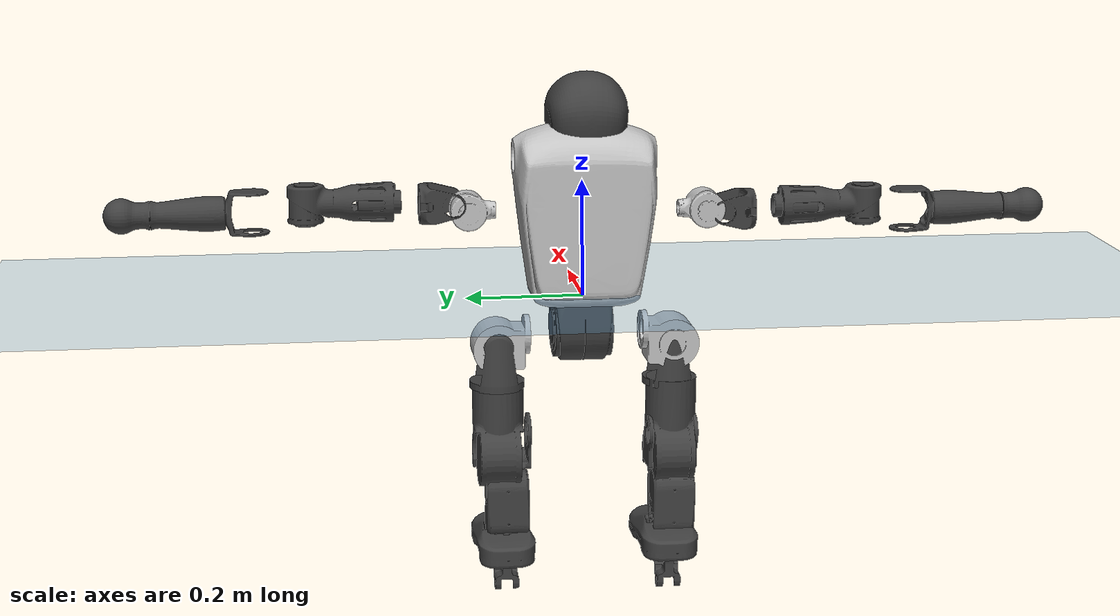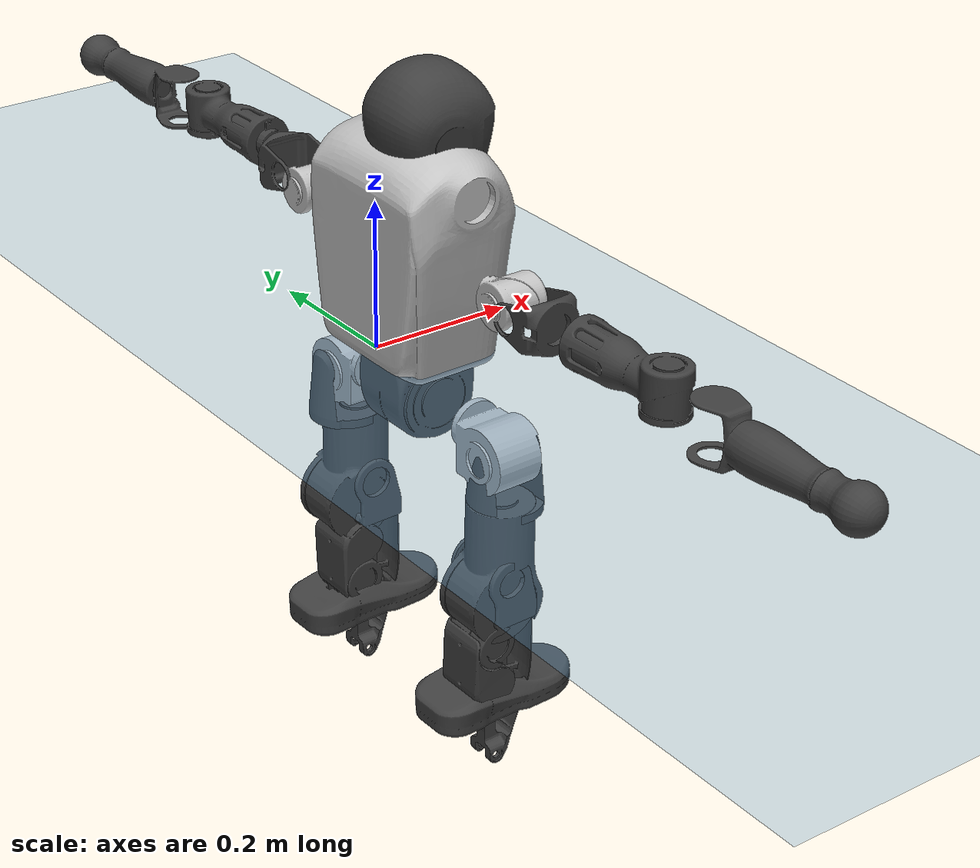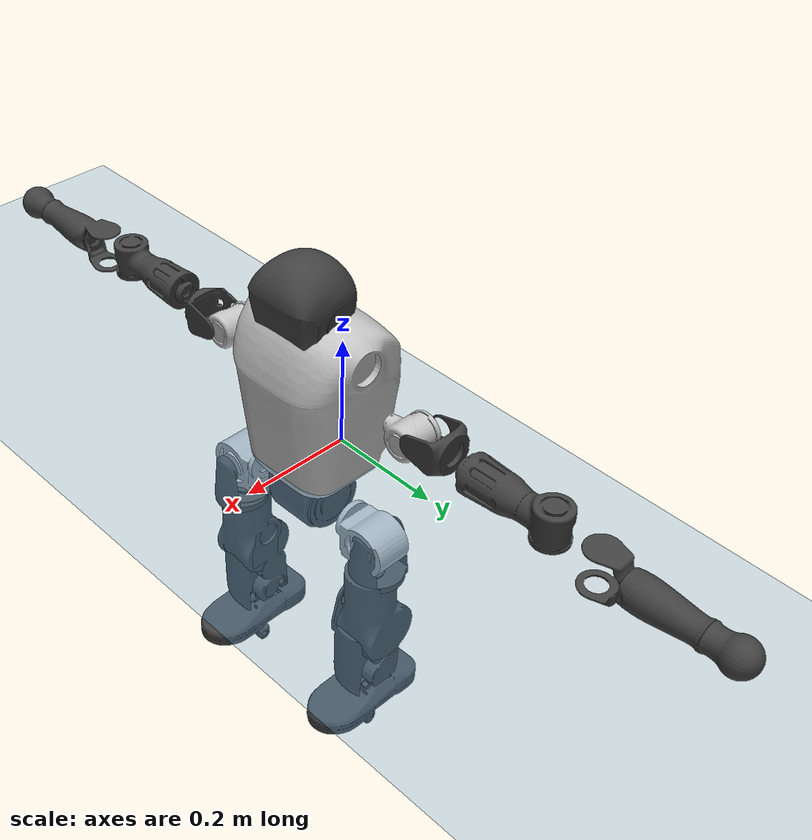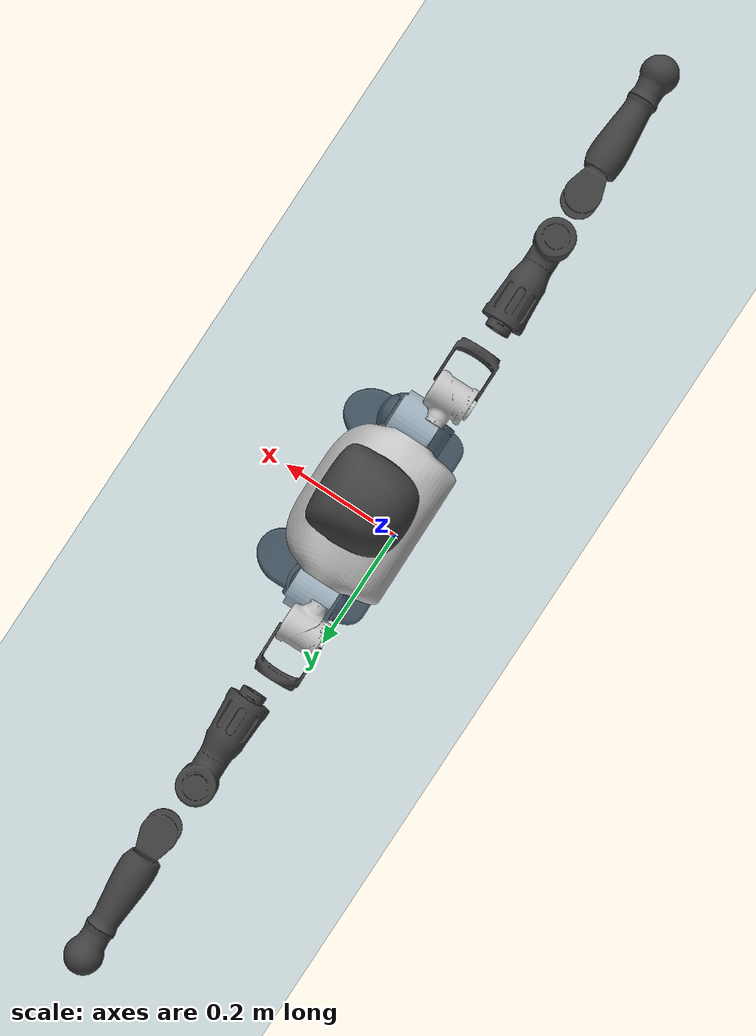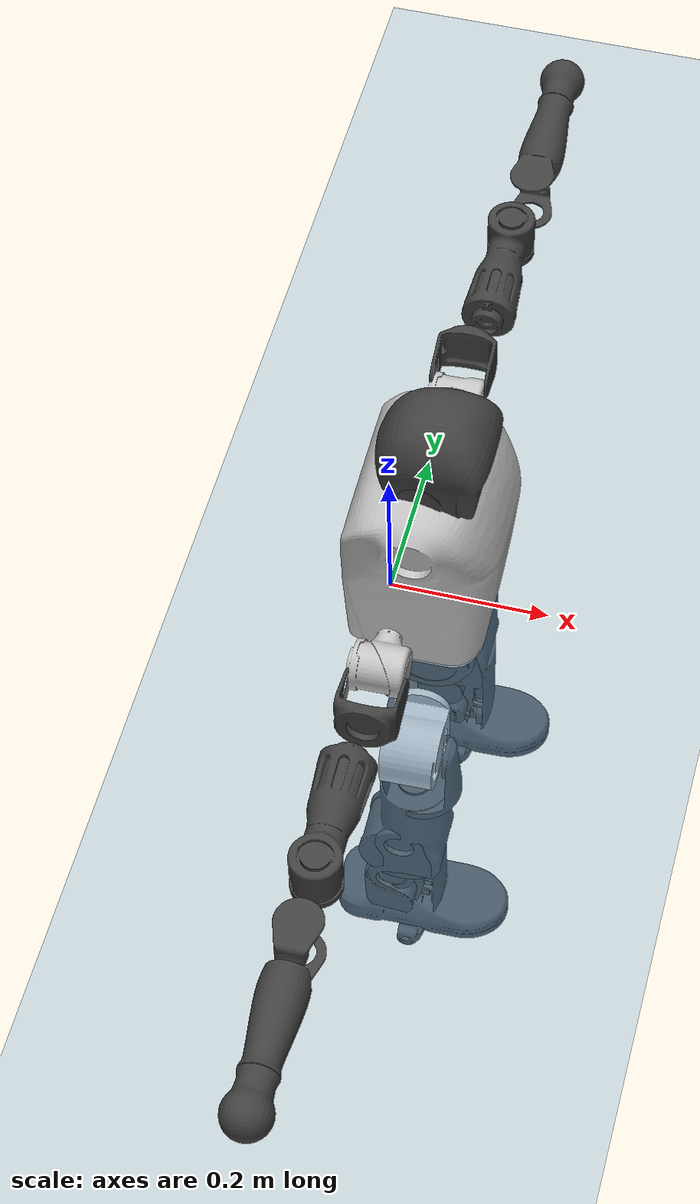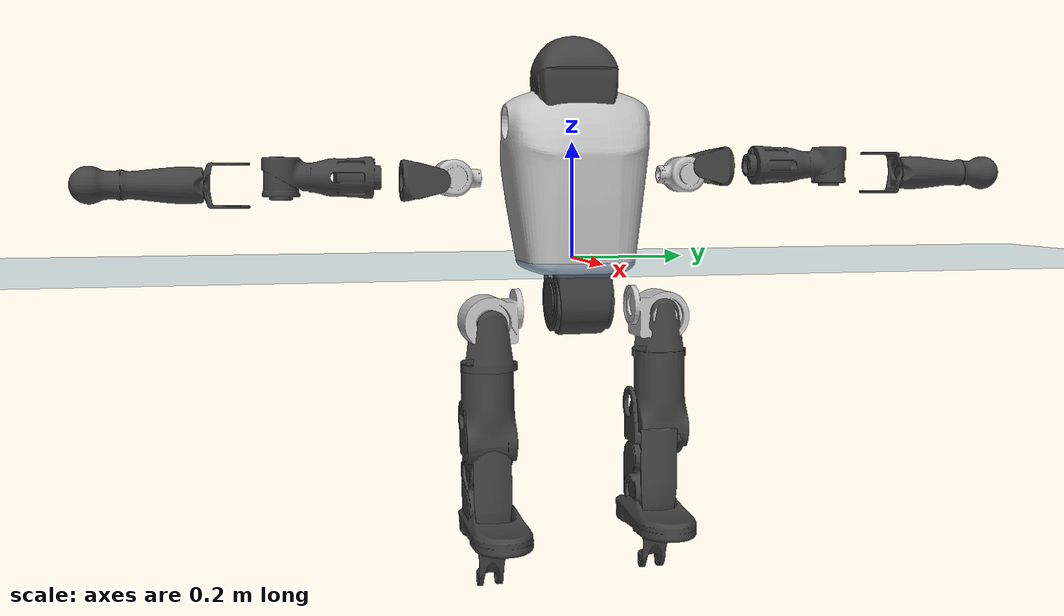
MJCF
<mujoco model="T1">
  <compiler angle="radian" assetdir="assets" balanceinertia="true" inertiafromgeom="false"/>

  <option timestep="0.005" density="1.2" viscosity="2e-05"/>

  <size nkey="1"/>

  <visual>
    <quality shadowsize="8192"/>
    <map shadowclip="0.5"/>
  </visual>

  <default>
    <default class="/">
      <joint armature="0.01" damping="0.01" frictionloss="0.1"/>
      <geom contype="0" conaffinity="0" group="1" solref="-1000 -80"/>
      <site size="0.01 0.005 0.005" group="5"/>
      <general forcelimited="true" biastype="affine" gainprm="25" biasprm="0 -25 -0.6"/>
      <default class="t1">
        <geom rgba="0.25 0.25 0.25 1"/>
        <default class="visual">
          <geom type="mesh" group="2"/>
        </default>
        <default class="collision">
          <geom group="3"/>
        </default>
        <default class="foot">
          <geom size="0.1115 0.05 0.015" type="box" condim="6" group="4" priority="1" solimp="0.015 1 0.015"/>
        </default>
        <default class="reward_collision_sphere">
          <geom group="5" rgba="1 0 0 1"/>
        </default>
      </default>
    </default>
  </default>

  <asset>
    <texture type="skybox" colorspace="auto" name="//unnamed_texture_0" builtin="gradient" rgb1="0.95 0.95 0.95" rgb2="0.95 0.95 0.95" width="100" height="600"/>
    <texture type="2d" colorspace="auto" name="texplane" builtin="checker" rgb1="0.345 0.575 0.748" rgb2="0.345 0.575 0.748" markrgb="1 1 1" width="512" height="512"/>
    <material name="MatPlane" class="/" texture="texplane" texuniform="true" texrepeat="2 2" specular="0.9"/>
    <mesh name="Trunk" class="/" file="Trunk.stl"/>
    <mesh name="H1" class="/" file="H1.stl"/>
    <mesh name="H2" class="/" file="H2.stl"/>
    <mesh name="AL1" class="/" file="AL1.stl"/>
    <mesh name="AL2" class="/" file="AL2.stl"/>
    <mesh name="AL3" class="/" file="AL3.stl"/>
    <mesh name="left_hand_link" class="/" file="left_hand_link.stl"/>
    <mesh name="AR1" class="/" file="AR1.stl"/>
    <mesh name="AR2" class="/" file="AR2.stl"/>
    <mesh name="AR3" class="/" file="AR3.stl"/>
    <mesh name="right_hand_link" class="/" file="right_hand_link.stl"/>
    <mesh name="Waist" class="/" file="Waist.stl"/>
    <mesh name="Hip_Pitch_Left" class="/" file="Hip_Pitch_Left.stl"/>
    <mesh name="Hip_Roll_Left" class="/" file="Hip_Roll_Left.stl"/>
    <mesh name="Hip_Yaw_Left" class="/" file="Hip_Yaw_Left.stl"/>
    <mesh name="Shank_Left" class="/" file="Shank_Left.stl"/>
    <mesh name="Ankle_Cross_Left" class="/" file="Ankle_Cross_Left.stl"/>
    <mesh name="left_foot_link" class="/" file="left_foot_link.stl"/>
    <mesh name="Hip_Pitch_Right" class="/" file="Hip_Pitch_Right.stl"/>
    <mesh name="Hip_Roll_Right" class="/" file="Hip_Roll_Right.stl"/>
    <mesh name="Hip_Yaw_Right" class="/" file="Hip_Yaw_Right.stl"/>
    <mesh name="Shank_Right" class="/" file="Shank_Right.stl"/>
    <mesh name="Ankle_Cross_Right" class="/" file="Ankle_Cross_Right.stl"/>
    <mesh name="right_foot_link" class="/" file="right_foot_link.stl"/>
  </asset>

  <worldbody>
    <geom name="floor" class="/" size="100 100 0.125" type="plane" group="0" material="MatPlane"/>
    <light name="toplight_shadow" class="/" pos="0 0 5" dir="0.0990148 0.0990148 -0.990148" type="directional" ambient="0.04 0.04 0.04" diffuse="0.55 0.55 0.55" specular="0.12 0.12 0.12"/>
    <light name="toplight_fill" class="/" pos="0 0 5" dir="0.0990148 0.0990148 -0.990148" type="directional" castshadow="false" ambient="0.04 0.04 0.04" diffuse="0.3 0.3 0.3" specular="0.08 0.08 0.08"/>
    <body name="trunk" childclass="t1" pos="-0.0012226 -0.00870762 0.013115" quat="0.999975 0.00338859 -0.000450613 0.006152">
      <inertial pos="0.0515816 0.00100535 0.0656264" quat="0.999931 0.00159143 -0.0101227 0.00573332" mass="14.2075" diaginertia="0.0873794 0.659481 0.0069605"/>
      <joint name="//unnamed_joint_0" type="free" armature="0" damping="0" frictionloss="0"/>
      <geom name="//unnamed_geom_1" class="visual" rgba="0.76 0.76 0.76 1" mesh="Trunk"/>
      <geom name="//unnamed_geom_2" class="collision" size="0.0774246 0.103233 0.154849" pos="0.0567829 0 0.0755418" type="box"/>
      <geom name="//unnamed_geom_3" class="reward_collision_sphere" size="0.118718" pos="0.0567829 0 0.0629515"/>
      <geom name="//unnamed_geom_4" class="reward_collision_sphere" size="0.0154849" pos="0.0567829 0.129292 0"/>
      <geom name="//unnamed_geom_5" class="reward_collision_sphere" size="0.0154849" pos="0.0567829 -0.129292 0"/>
      <geom name="//unnamed_geom_6" class="reward_collision_sphere" size="0.0154849" pos="0.0567829 0.162756 0.113313"/>
      <geom name="//unnamed_geom_7" class="reward_collision_sphere" size="0.0154849" pos="0.0567829 -0.162756 0.113313"/>
      <site name="imu" pos="0.0645725 0.0057545 -0.00481951" size="0.0103233"/>
      <camera name="track" pos="0 -3.04217 0" quat="0.707107 0.707107 0 0" mode="trackcom"/>
      <camera name="ego_camera" pos="0.115459 0 0.264396" quat="-0.5 -0.5 0.5 0.5"/>
      <body name="H1" pos="0.050267 -0.000195001 0.143683" quat="0.999981 -0.00102076 -0.00551398 -0.00265959">
        <inertial pos="-0.0111392 -0.00907155 0.0324086" quat="0.764847 -0.0119503 0.00185787 0.644099" mass="0.421263" diaginertia="0.000160879 0.00150059 1.59898e-05"/>
        <joint name="AAHead_yaw" pos="0 0 0" axis="0.00235999 0.00199158 0.999995" range="-1.27604 1.65306" armature="0.00986343" damping="0.0398276" frictionloss="0.0742807"/>
        <geom name="//unnamed_geom_8" class="visual" mesh="H1"/>
        <body name="H2" pos="0.00377129 -0.00405208 0.0292536" quat="0.999977 0.00675651 -0.00019487 0.00078925">
          <inertial pos="0.0047838 -0.000708616 0.0609436" quat="0.988461 0.106177 -0.0744772 -0.0782592" mass="0.825841" diaginertia="0.00175341 0.0179035 0.000173489"/>
          <joint name="Head_pitch" pos="0 0 0" axis="0.0126737 -0.997985 -0.0621643" stiffness="0.0325549" range="-1.02468 0.0889763" armature="0.00457298" damping="0" frictionloss="0.0328823"/>
          <geom name="//unnamed_geom_9" class="visual" mesh="H2"/>
          <geom name="//unnamed_geom_10" class="collision" size="0.0825862" pos="0.00946382 0 0.0692466"/>
          <geom name="//unnamed_geom_11" class="reward_collision_sphere" size="0.0929095" pos="0.0189276 0 0.0629515"/>
        </body>
      </body>
      <body name="AL1" pos="0.0412314 0.153664 0.130521" quat="1 7.55315e-05 0.000729683 0.000393793">
        <inertial pos="0.0132557 0.0744647 0.00670351" quat="0.462602 0.520076 -0.515527 0.499752" mass="0.645431" diaginertia="0.00108457 0.00946601 3.23021e-05"/>
        <joint name="Left_Shoulder_Pitch" pos="0 0 0" axis="0.00203047 0.999992 0.00338204" range="-3.26197 1.23929" armature="0.00960238" damping="0" frictionloss="0.133572"/>
        <geom name="//unnamed_geom_12" class="visual" rgba="0.76 0.76 0.76 1" mesh="AL1"/>
        <body name="AL2" pos="-0.00181435 0.0738225 0.0133738" quat="0.999979 -0.00216712 -0.000862988 0.00602997">
          <inertial pos="0.00911405 0.0571281 0.0117463" quat="0.501939 0.522352 -0.488522 0.486367" mass="0.154689" diaginertia="0.000322503 0.003142 1.67961e-05"/>
          <joint name="Left_Shoulder_Roll" pos="0 0 0" axis="-0.997837 0.0194331 0.0628012" range="-1.54908 1.8089" armature="0.009148" damping="0" frictionloss="0.17058"/>
          <geom name="//unnamed_geom_13" class="visual" mesh="AL2"/>
          <body name="AL3" pos="0.0134364 0.0989075 0.00220973" quat="1 -5.61295e-05 0.000538207 -0.000146096">
            <inertial pos="0.00270346 0.129356 -0.0120161" quat="0.703064 0.711113 0.00168439 -0.00393571" mass="1.10884" diaginertia="0.00884962 0.103708 6.59796e-05"/>
            <joint name="Left_Elbow_Pitch" pos="0 0 0" axis="-0.0591589 -0.998109 0.0166991" range="-2.3259 2.27437" armature="0.0129159" damping="0.00717787" frictionloss="0.0721631"/>
            <geom name="//unnamed_geom_14" class="visual" mesh="AL3"/>
            <geom name="//unnamed_geom_15" class="collision" size="0.0309698 0.0774246" pos="0 0.0760544 0" quat="0.707105 0.707108 0 0" type="cylinder"/>
            <geom name="//unnamed_geom_16" class="reward_collision_sphere" size="0.0371638"/>
            <body name="left_hand_link" pos="0.00884938 0.236317 -0.0141066" quat="0.999997 -0.0014572 0.00201151 0.000890244">
              <inertial pos="-0.000434803 0.160115 -0.00936515" quat="0.707625 0.706587 -0.000726769 -0.000516022" mass="0.320106" diaginertia="0.00598381 0.0485105 1.74855e-05"/>
              <joint name="Left_Elbow_Yaw" pos="0 0 0" axis="-0.0374572 0.0456781 0.998254" stiffness="0.0482669" range="-2.53322 0.00568121" armature="0.00980207" damping="0.00948866" frictionloss="0.0591295"/>
              <geom name="//unnamed_geom_17" class="visual" mesh="left_hand_link"/>
              <geom name="//unnamed_geom_18" class="collision" size="0.0309698 0.0903287" pos="0 0.197741 0" quat="0.707105 0.707108 0 0" type="cylinder"/>
              <geom name="//unnamed_geom_19" class="reward_collision_sphere" size="0.0516164"/>
              <geom name="//unnamed_geom_20" class="reward_collision_sphere" size="0.0361315" pos="0 0.16732 0"/>
              <geom name="//unnamed_geom_21" class="reward_collision_sphere" size="0.0361315" pos="0 0.327034 0"/>
            </body>
          </body>
        </body>
      </body>
      <body name="AR1" pos="0.0441066 -0.162348 0.126578" quat="0.999982 -0.00532281 -0.00269335 0.000559482">
        <inertial pos="-0.000210075 -0.0619469 -0.00330877" quat="0.503362 0.513439 -0.513247 0.468598" mass="0.620057" diaginertia="0.00125511 0.0113753 3.04977e-05"/>
        <joint name="Right_Shoulder_Pitch" pos="0 0 0" axis="0.0106401 -0.999779 -0.0181334" stiffness="0.0579999" range="-1.23141 3.1354" armature="0.0125398" damping="0.0637574" frictionloss="0.0966161"/>
        <geom name="//unnamed_geom_22" class="visual" rgba="0.76 0.76 0.76 1" mesh="AR1"/>
        <body name="AR2" pos="-0.00031967 -0.076104 -0.00448558" quat="0.999991 -0.00026482 0.00386978 -0.00161502">
          <inertial pos="0.00947766 -0.0577142 -0.00908347" quat="0.510126 0.48871 -0.512625 0.488005" mass="0.199789" diaginertia="0.00024841 0.00285646 1.98338e-05"/>
          <joint name="Right_Shoulder_Roll" pos="0 0 0" axis="-0.999974 -0.00591597 0.00400712" stiffness="0.00201057" range="-1.82083 1.59168" armature="0.00920909" damping="0" frictionloss="0.0426997"/>
          <geom name="//unnamed_geom_23" class="visual" mesh="AR2"/>
          <body name="AR3" pos="-0.00331186 -0.103144 0.00466761" quat="0.999998 -0.000433313 0.00100377 0.00166363">
            <inertial pos="0.0136288 -0.129196 -0.0033574" quat="0.736737 0.675823 -0.0134158 -0.0173645" mass="0.910595" diaginertia="0.0104979 0.114948 6.10686e-05"/>
            <joint name="Right_Elbow_Pitch" pos="0 0 0" axis="0.0315478 0.999339 0.0180799" stiffness="0.071288" range="-2.26481 2.41121" armature="0.0161749" damping="0.0108083" frictionloss="0.109347"/>
            <geom name="//unnamed_geom_24" class="visual" mesh="AR3"/>
            <geom name="//unnamed_geom_25" class="collision" size="0.0309698 0.0774246" pos="0 -0.0760544 0" quat="0.707105 0.707108 0 0" type="cylinder"/>
            <geom name="//unnamed_geom_26" class="reward_collision_sphere" size="0.0371638"/>
            <body name="right_hand_link" pos="0.00125524 -0.223859 -0.0136972" quat="1 -0.000218216 -0.000549997 0.000568581">
              <inertial pos="0.00883994 -0.176735 0.00481308" quat="0.718988 0.694908 0.0113575 0.0054013" mass="0.388123" diaginertia="0.00626459 0.0768789 2.1108e-05"/>
              <joint name="Right_Elbow_Yaw" pos="0 0 0" axis="0.0192777 0.0114219 0.999749" stiffness="0.0216279" range="0.0190807 2.41978" armature="0.0132285" damping="0.0391313" frictionloss="0.100614"/>
              <geom name="//unnamed_geom_27" class="visual" mesh="right_hand_link"/>
              <geom name="//unnamed_geom_28" class="collision" size="0.0309698 0.0903287" pos="0 -0.197741 0" quat="0.707105 0.707108 0 0" type="cylinder"/>
              <geom name="//unnamed_geom_29" class="reward_collision_sphere" size="0.0516164"/>
              <geom name="//unnamed_geom_30" class="reward_collision_sphere" size="0.0361315" pos="0 -0.16732 0"/>
              <geom name="//unnamed_geom_31" class="reward_collision_sphere" size="0.0361315" pos="0 -0.327034 0"/>
            </body>
          </body>
        </body>
      </body>
      <body name="Waist" pos="0.0605252 0.00241672 -0.0816261" quat="1 -0.000148577 0.000495609 -6.21755e-05">
        <inertial pos="-0.00537942 0.000260556 -0.00118602" quat="0.983483 0.00137266 -0.180995 0.000625842" mass="2.76363" diaginertia="0.00432942 0.035031 0.000496869"/>
        <joint name="Waist" pos="0 0 0" axis="-0.00364967 0.0186044 0.99982" stiffness="0.0411818" range="-1.37322 1.42665" armature="0.0112786" damping="0.0712939" frictionloss="0.096494"/>
        <geom name="//unnamed_geom_32" class="visual" mesh="Waist"/>
        <body name="Hip_Pitch_Left" pos="0.000381787 0.146987 -0.0118302" quat="1 -7.11165e-05 0.00017721 4.99811e-05">
          <inertial pos="0.00921347 -0.0108947 0.00263537" quat="0.974108 0.226053 -0.00201308 -0.00304547" mass="0.960097" diaginertia="0.00124224 0.0120035 0.000121723"/>
          <joint name="Left_Hip_Pitch" pos="0 0 0" axis="-0.0388319 0.999195 0.0101115" stiffness="0.0538882" range="-2.01754 1.5774" armature="0.0102874" damping="0.0639363" frictionloss="0.16142"/>
          <geom name="//unnamed_geom_33" class="visual" rgba="0.76 0.76 0.76 1" mesh="Hip_Pitch_Left"/>
          <body name="Hip_Roll_Left" pos="-0.00638275 0.000735927 -0.014069" quat="1 -8.12994e-05 0.000211099 -0.000442196">
            <inertial pos="0.00137402 0.00289882 -0.0333352" quat="0.712013 0.0103503 -0.0323004 0.701347" mass="0.376342" diaginertia="0.00120343 0.0097855 4.49711e-05"/>
            <joint name="Left_Hip_Roll" pos="0 0 0" axis="-0.999698 -0.0194169 0.0150956" range="-1.76111 0.174507" armature="0.0105684" damping="0" frictionloss="0.152319"/>
            <geom name="//unnamed_geom_34" class="visual" mesh="Hip_Roll_Left"/>
            <geom name="//unnamed_geom_35" class="reward_collision_sphere" size="0.056778"/>
            <body name="Hip_Yaw_Left" pos="0.0104381 -0.0025108 -0.0657655" quat="1 2.63255e-05 -0.000367093 -0.000254493">
              <inertial pos="-0.00962279 0.000642147 -0.0434735" quat="0.681913 -0.0482998 -0.0372581 0.728885" mass="2.67675" diaginertia="0.0160494 0.195768 0.000261845"/>
              <joint name="Left_Hip_Yaw" pos="0 0 0" axis="-0.0489948 -0.00914485 -0.998757" stiffness="0.0722764" range="-1.02786 0.804402" armature="0.015634" damping="0.0497608" frictionloss="0.164675"/>
              <geom name="//unnamed_geom_36" class="visual" mesh="Hip_Yaw_Left"/>
              <geom name="//unnamed_geom_37" class="collision" size="0.0516164 0.0825862" type="cylinder"/>
              <body name="Shank_Left" pos="-0.00513138 -0.0125675 -0.0957461" quat="0.999977 -0.00399683 -0.00533739 0.0015557">
                <inertial pos="-0.0127071 0.014954 -0.0728671" quat="0.99436 -0.0521246 -0.0471703 0.0794121" mass="1.72208" diaginertia="0.0208106 0.258727 0.000167646"/>
                <joint name="Left_Knee_Pitch" pos="0 0 0" axis="0.00810814 0.999333 -0.0355968" stiffness="0.00125148" range="0.0748825 2.31559" armature="0.00534899" damping="0.0267008" frictionloss="0.167433"/>
                <geom name="//unnamed_geom_38" class="visual" mesh="Shank_Left"/>
                <geom name="//unnamed_geom_39" class="collision" size="0.0516164 0.0774246" pos="0 0 -0.0755418" type="cylinder"/>
                <geom name="//unnamed_geom_40" class="reward_collision_sphere" size="0.0671013"/>
                <body name="Ankle_Cross_Left" pos="0.0135948 0.00519839 -0.178221" quat="1 0.000593334 0.000166778 -0.000111851">
                  <inertial pos="-0.00437184 0.000875281 -0.00510365" quat="0.493591 0.517794 0.562375 0.414718" mass="0.0712699" diaginertia="2.18165e-05 0.000200233 1.07322e-06"/>
                  <joint name="Left_Ankle_Pitch" pos="0 0 0" axis="0.0350679 0.99914 0.0221195" range="-0.849373 0.584729" armature="0.011237" damping="0.00782256" frictionloss="0.098859"/>
                  <geom name="//unnamed_geom_41" class="visual" mesh="Ankle_Cross_Left"/>
                  <body name="left_foot_link" pos="-0.0097406 0.00037885 -0.00958213" quat="0.999991 0.00022518 -0.00269206 0.00331376">
                    <inertial pos="-0.000372611 -0.00072476 -0.020117" quat="-0.00136531 0.619813 0.00402164 0.784738" mass="0.888218" diaginertia="0.00244369 0.0207949 0.000251464"/>
                    <joint name="Left_Ankle_Roll" pos="0 0 0" axis="-0.999211 0.00380571 0.0395277" range="-0.254381 0.315478" armature="0.00999425" damping="0" frictionloss="0.106022"/>
                    <geom name="//unnamed_geom_42" class="visual" mesh="left_foot_link"/>
                    <geom name="left_foot" class="foot" size="0.0616899 0.0266575 0.0116669" pos="0.00946382 0 -0.00944272"/>
                    <geom name="//unnamed_geom_44" class="reward_collision_sphere" size="0.0536811" pos="0.00946382 0 -0.00944272"/>
                    <geom name="//unnamed_geom_45" class="reward_collision_sphere" size="0.0309698" pos="0.0899063 -0.034985 -0.00944272"/>
                    <geom name="//unnamed_geom_46" class="reward_collision_sphere" size="0.0309698" pos="-0.0662467 -0.034985 -0.00944272"/>
                    <site name="left_foot" class="foot" pos="0.00946382 0 -0.00944272" size="0.0103233"/>
                  </body>
                </body>
              </body>
            </body>
          </body>
        </body>
        <body name="Hip_Pitch_Right" pos="0.00999239 -0.161596 -0.0117509" quat="0.99998 0.00363631 -0.00268254 0.00453102">
          <inertial pos="0.00140834 0.025325 -0.0150716" quat="0.974021 -0.225163 0.00412063 0.0238126" mass="1.07379" diaginertia="0.00127965 0.011193 0.000106926"/>
          <joint name="Right_Hip_Pitch" pos="0 0 0" axis="0.00172214 -0.999998 0.000568388" stiffness="0.0392228" range="-1.73773 2.0332" armature="0.0106797" damping="0" frictionloss="0.0334086"/>
          <geom name="//unnamed_geom_47" class="visual" rgba="0.76 0.76 0.76 1" mesh="Hip_Pitch_Right"/>
          <body name="Hip_Roll_Right" pos="0.0120891 -2.50291e-05 -0.0229425" quat="1 -6.79718e-07 -2.70447e-06 9.17322e-06">
            <inertial pos="0.00603992 0.00114791 -0.0405201" quat="0.706088 -0.00677015 -0.006797 0.708059" mass="0.423533" diaginertia="0.00156166 0.0114732 4.75953e-05"/>
            <joint name="Right_Hip_Roll" pos="0 0 0" axis="-0.999354 -0.0262466 -0.0245457" range="-0.375174 1.67747" armature="0.00943587" damping="0.041017" frictionloss="0.0467583"/>
            <geom name="//unnamed_geom_48" class="visual" mesh="Hip_Roll_Right"/>
            <geom name="//unnamed_geom_49" class="reward_collision_sphere" size="0.056778"/>
            <body name="Hip_Yaw_Right" pos="-0.0105549 -0.00175524 -0.0628661" quat="1 -0.000207158 -0.000519626 0.000488967">
              <inertial pos="0.00443283 -0.0145839 -0.0591427" quat="0.714657 -0.0324282 -0.0335587 0.697917" mass="2.99571" diaginertia="0.019556 0.228525 0.000323294"/>
              <joint name="Right_Hip_Yaw" pos="0 0 0" axis="0.0225993 0.01422 -0.999643" stiffness="0.0130516" range="-1.05266 0.983701" armature="0.0105786" damping="0" frictionloss="0.102963"/>
              <geom name="//unnamed_geom_50" class="visual" mesh="Hip_Yaw_Right"/>
              <geom name="//unnamed_geom_51" class="collision" size="0.0516164 0.0825862" type="cylinder"/>
              <body name="Shank_Right" pos="-0.0129226 -0.000233431 -0.0980915" quat="1 -6.62093e-06 6.97072e-05 -3.89723e-05">
                <inertial pos="0.00955166 -0.00541406 -0.0681708" quat="0.994864 -0.0406782 -0.0429988 -0.0821051" mass="2.03888" diaginertia="0.0323895 0.291524 0.000226481"/>
                <joint name="Right_Knee_Pitch" pos="0 0 0" axis="-0.00066624 -1 0.000691916" range="-2.35861 0.241528" armature="0.0110711" damping="0" frictionloss="0.151169"/>
                <geom name="//unnamed_geom_52" class="visual" mesh="Shank_Right"/>
                <geom name="//unnamed_geom_53" class="collision" size="0.0516164 0.0774246" pos="0 0 -0.0755418" type="cylinder"/>
                <geom name="//unnamed_geom_54" class="reward_collision_sphere" size="0.0671013"/>
                <body name="Ankle_Cross_Right" pos="0.00731083 0.00650543 -0.164625" quat="0.999997 -0.00191218 -0.00161978 0.000395453">
                  <inertial pos="-0.00405135 0.00730397 -0.0045538" quat="0.456611 0.562128 0.51913 0.453897" mass="0.0926856" diaginertia="2.34553e-05 0.000224441 1.19357e-06"/>
                  <joint name="Right_Ankle_Pitch" pos="0 0 0" axis="0.00496655 -0.999987 -0.00149099" range="-0.649032 0.698954" armature="0.0112686" damping="0" frictionloss="0.109724"/>
                  <geom name="//unnamed_geom_55" class="visual" mesh="Ankle_Cross_Right"/>
                  <body name="right_foot_link" pos="0.00184898 0.00239499 -0.01608" quat="1 -8.0156e-05 -0.000274749 -5.97935e-06">
                    <inertial pos="-0.000988894 0.00551021 -0.0197233" quat="-0.00481099 0.613408 0.00192391 0.789749" mass="0.767812" diaginertia="0.00200089 0.0212675 0.000224808"/>
                    <joint name="Right_Ankle_Roll" pos="0 0 0" axis="-0.999999 0.000570545 -0.000953039" stiffness="0.000217891" range="-0.361713 0.447941" armature="0.00969968" damping="0.0331188" frictionloss="0.026424"/>
                    <geom name="//unnamed_geom_56" class="visual" mesh="right_foot_link"/>
                    <geom name="right_foot" class="foot" size="0.0740871 0.0795015 0.00682786" pos="0.00946382 0 -0.00944272"/>
                    <geom name="//unnamed_geom_58" class="reward_collision_sphere" size="0.0412931"/>
                    <geom name="//unnamed_geom_59" class="reward_collision_sphere" size="0.0309698" pos="0.00946382 0 -0.00944272"/>
                    <geom name="//unnamed_geom_60" class="reward_collision_sphere" size="0.0309698" pos="0.0899063 0.034985 -0.00944272"/>
                    <geom name="//unnamed_geom_61" class="reward_collision_sphere" size="0.0309698" pos="-0.0662467 0.034985 -0.00944272"/>
                    <site name="right_foot" class="foot" pos="0.00946382 0 -0.00944272" size="0.0103233"/>
                  </body>
                </body>
              </body>
            </body>
          </body>
        </body>
      </body>
    </body>
  </worldbody>

  <contact>
    <pair class="/" geom1="floor" geom2="left_foot" name="//unnamed_contact_0"/>
    <pair class="/" geom1="floor" geom2="right_foot" name="//unnamed_contact_1"/>
  </contact>

  <actuator>
    <general name="AAHead_yaw" class="/" joint="AAHead_yaw" forcerange="-6.98785 6.98785" gainprm="19.1178" biasprm="0 -19.1178 -0.604723"/>
    <general name="Head_pitch" class="/" joint="Head_pitch" forcerange="-5.45445 5.45445" gainprm="19.1178" biasprm="0 -19.1178 -0.604723"/>
    <general name="Left_Shoulder_Pitch" class="/" joint="Left_Shoulder_Pitch" forcerange="-22.9089 22.9089" gainprm="19.1178" biasprm="0 -19.1178 -0.604723"/>
    <general name="Left_Shoulder_Roll" class="/" joint="Left_Shoulder_Roll" forcerange="-15.8039 15.8039" gainprm="19.1178" biasprm="0 -19.1178 -0.604723"/>
    <general name="Left_Elbow_Pitch" class="/" joint="Left_Elbow_Pitch" forcerange="-26.6263 26.6263" gainprm="19.1178" biasprm="0 -19.1178 -0.604723"/>
    <general name="Left_Elbow_Yaw" class="/" joint="Left_Elbow_Yaw" forcerange="-18.8105 18.8105" gainprm="19.1178" biasprm="0 -19.1178 -0.604723"/>
    <general name="Right_Shoulder_Pitch" class="/" joint="Right_Shoulder_Pitch" forcerange="-16.5112 16.5112" gainprm="19.1178" biasprm="0 -19.1178 -0.604723"/>
    <general name="Right_Shoulder_Roll" class="/" joint="Right_Shoulder_Roll" forcerange="-12.9527 12.9527" gainprm="19.1178" biasprm="0 -19.1178 -0.604723"/>
    <general name="Right_Elbow_Pitch" class="/" joint="Right_Elbow_Pitch" forcerange="-18.3429 18.3429" gainprm="19.1178" biasprm="0 -19.1178 -0.604723"/>
    <general name="Right_Elbow_Yaw" class="/" joint="Right_Elbow_Yaw" forcerange="-18.4076 18.4076" gainprm="19.1178" biasprm="0 -19.1178 -0.604723"/>
    <general name="Waist" class="/" joint="Waist" forcerange="-31.3535 31.3535" gainprm="19.1178" biasprm="0 -19.1178 -0.604723"/>
    <general name="Left_Hip_Pitch" class="/" joint="Left_Hip_Pitch" forcerange="-45.1459 45.1459" gainprm="19.1178" biasprm="0 -19.1178 -0.604723"/>
    <general name="Left_Hip_Roll" class="/" joint="Left_Hip_Roll" forcerange="-15.2284 15.2284" gainprm="19.1178" biasprm="0 -19.1178 -0.604723"/>
    <general name="Left_Hip_Yaw" class="/" joint="Left_Hip_Yaw" forcerange="-40.6964 40.6964" gainprm="19.1178" biasprm="0 -19.1178 -0.604723"/>
    <general name="Left_Knee_Pitch" class="/" joint="Left_Knee_Pitch" forcerange="-31.8162 31.8162" gainprm="19.1178" biasprm="0 -19.1178 -0.604723"/>
    <general name="Left_Ankle_Pitch" class="/" joint="Left_Ankle_Pitch" forcerange="-26.9617 26.9617" gainprm="19.1178" biasprm="0 -19.1178 -0.604723"/>
    <general name="Left_Ankle_Roll" class="/" joint="Left_Ankle_Roll" forcerange="-19.8786 19.8786" gainprm="19.1178" biasprm="0 -19.1178 -0.604723"/>
    <general name="Right_Hip_Pitch" class="/" joint="Right_Hip_Pitch" forcerange="-67.361 67.361" gainprm="19.1178" biasprm="0 -19.1178 -0.604723"/>
    <general name="Right_Hip_Roll" class="/" joint="Right_Hip_Roll" forcerange="-32.9884 32.9884" gainprm="19.1178" biasprm="0 -19.1178 -0.604723"/>
    <general name="Right_Hip_Yaw" class="/" joint="Right_Hip_Yaw" forcerange="-20.9527 20.9527" gainprm="19.1178" biasprm="0 -19.1178 -0.604723"/>
    <general name="Right_Knee_Pitch" class="/" joint="Right_Knee_Pitch" forcerange="-65.5694 65.5694" gainprm="19.1178" biasprm="0 -19.1178 -0.604723"/>
    <general name="Right_Ankle_Pitch" class="/" joint="Right_Ankle_Pitch" forcerange="-21.6802 21.6802" gainprm="19.1178" biasprm="0 -19.1178 -0.604723"/>
    <general name="Right_Ankle_Roll" class="/" joint="Right_Ankle_Roll" forcerange="-15.7975 15.7975" gainprm="19.1178" biasprm="0 -19.1178 -0.604723"/>
  </actuator>

  <sensor>
    <gyro site="imu" name="imu_angular_velocity"/>
    <velocimeter site="imu" name="imu_linear_velocity"/>
    <framelinvel objtype="site" objname="left_foot" name="left_foot_global_linear_velocity"/>
    <framelinvel objtype="site" objname="right_foot" name="right_foot_global_linear_velocity"/>
  </sensor>

  <keyframe>
    <key name="home" qpos="0 0 0.6385 1 0 0 0 0 0 0 1.4 0 -0.4 0 -1.4 0 0.4 0 -0.4 0 0 0.8 -0.4 0 0.4 0 0 -0.8 0.4 0"/>
  </keyframe>
</mujoco>
